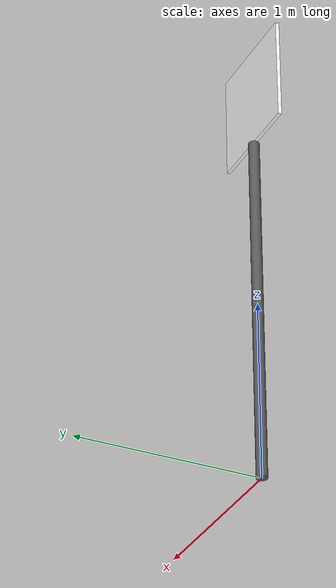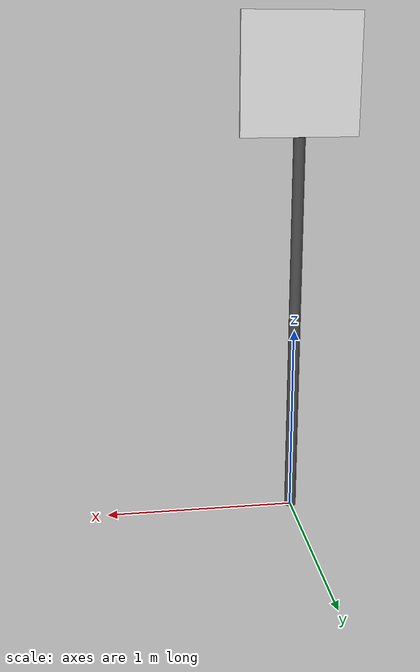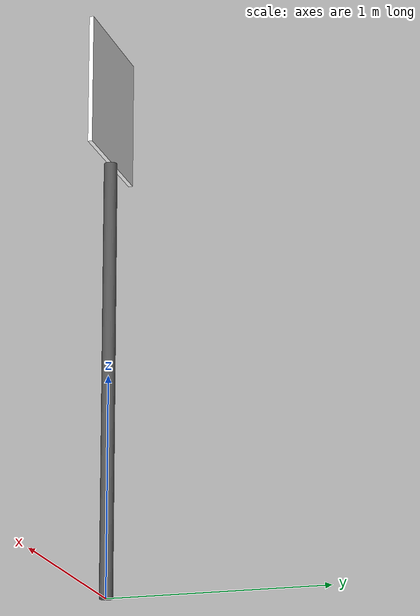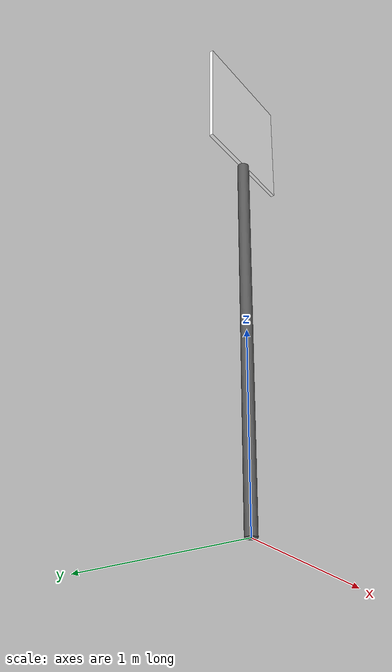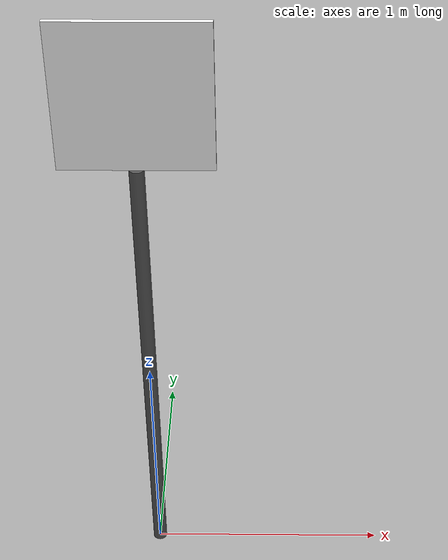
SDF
<?xml version="1.0"?>
<sdf version="1.6">
  <model name="durak_sign">
    <static>true</static>
    <link name="link">

      <!-- Direk -->
      <visual name="pole">
        <pose>0 0 1.0 0 0 0</pose>
        <geometry>
          <cylinder>
            <radius>0.03</radius>
            <length>2.0</length>
          </cylinder>
        </geometry>
        <material>
          <ambient>0.35 0.35 0.35 1</ambient>
          <diffuse>0.35 0.35 0.35 1</diffuse>
        </material>
      </visual>

      <!-- Tabela paneli – Durak.png dokusu, kameraya dönük (-Y yüzü güneye bakıyor) -->
      <visual name="sign_board">
        <pose>0 0 2.3 0 0 0</pose>
        <geometry>
          <box>
            <size>0.6 0.02 0.6</size>
          </box>
        </geometry>
        <material>
          <diffuse>1 1 1 1</diffuse>
          <specular>0.05 0.05 0.05 1</specular>
          <pbr>
            <metal>
              <albedo_map>model://durak_sign/Durak.png</albedo_map>
              <metalness>0.0</metalness>
              <roughness>0.8</roughness>
            </metal>
          </pbr>
        </material>
      </visual>

      <!-- Direk çarpışması -->
      <collision name="collision">
        <pose>0 0 1.0 0 0 0</pose>
        <geometry>
          <cylinder>
            <radius>0.03</radius>
            <length>2.0</length>
          </cylinder>
        </geometry>
      </collision>

    </link>
  </model>
</sdf>
